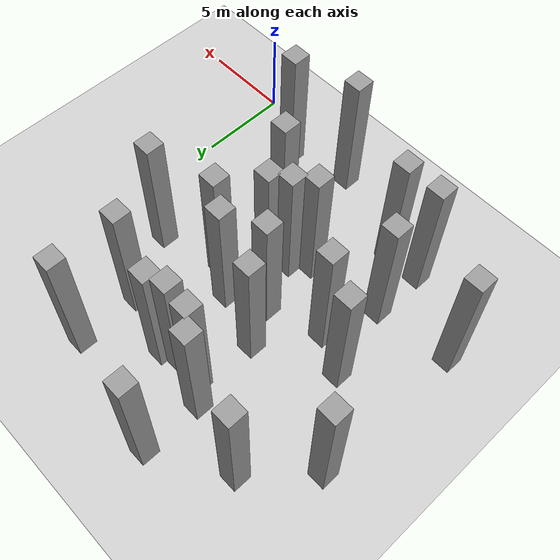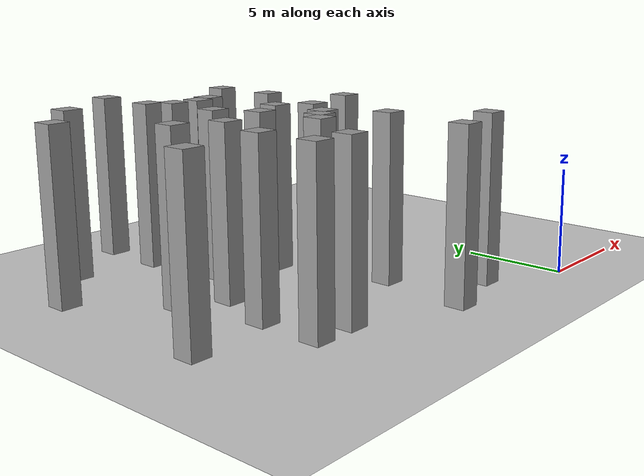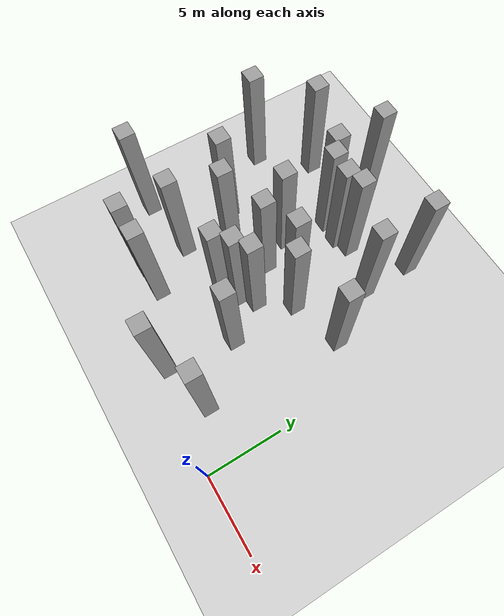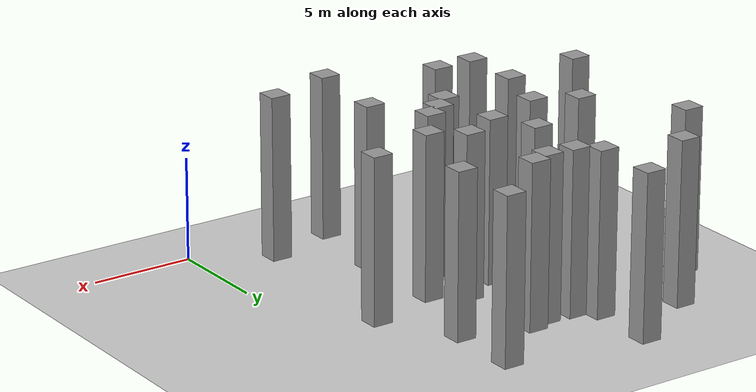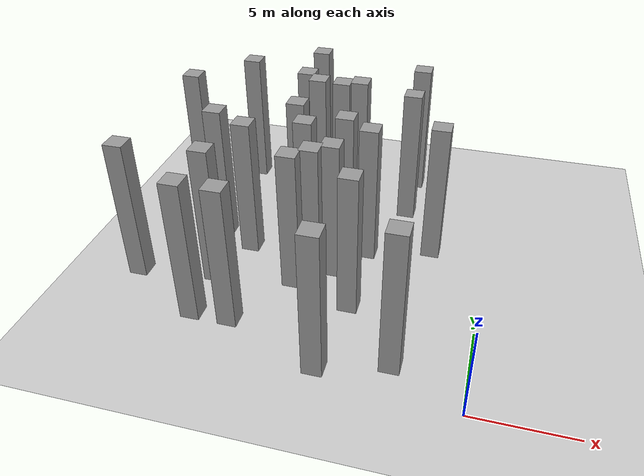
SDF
<sdf version="1.7">
 <world name="default">
  <model name="ground_plane">
   <static>1</static>
   <link name="link">
    <collision name="collision">
     <geometry><plane><normal>0 0 1</normal><size>100 100</size></plane></geometry>
     <surface>
      <contact><collide_bitmask>65535</collide_bitmask></contact>
      <friction><ode><mu>100</mu><mu2>50</mu2></ode></friction>
     </surface>
    </collision>
    <visual name="visual">
     <cast_shadows>0</cast_shadows>
     <geometry><plane><normal>0 0 1</normal><size>100 100</size></plane></geometry>
     <material>
      <script><uri>file://media/materials/scripts/gazebo.material</uri><name>Gazebo/Grey</name></script>
     </material>
    </visual>
   </link>
  </model>
  <model name="unit_box_static95_clone_11">
   <link name="link">
    <inertial>
     <mass>1</mass>
     <inertia>
      <ixx>0.166667</ixx>
      <ixy>0</ixy>
      <ixz>0</ixz>
      <iyy>0.166667</iyy>
      <iyz>0</iyz>
      <izz>0.166667</izz>
     </inertia>
    </inertial>
    <visual name="visual">
     <geometry><box><size>1 1 8</size></box></geometry>
     <material>
      <script><name>Gazebo/Grey</name><uri>file://media/materials/scripts/gazebo.material</uri></script>
      <shader type="pixel"/>
     </material>
    </visual>
    <collision name="collision">
     <geometry><box><size>1 1 8</size></box></geometry>
     <surface>
      <friction>
       <ode><mu>1</mu><mu2>1</mu2><fdir1>0 0 0</fdir1><slip1>0</slip1><slip2>0</slip2></ode>
       <torsional>
        <coefficient>1</coefficient>
        <patch_radius>0</patch_radius>
        <surface_radius>0</surface_radius>
        <use_patch_radius>1</use_patch_radius>
        <ode><slip>0</slip></ode>
       </torsional>
      </friction>
      <bounce><restitution_coefficient>0</restitution_coefficient><threshold>1e+06</threshold></bounce>
      <contact>
       <collide_without_contact>0</collide_without_contact>
       <collide_without_contact_bitmask>1</collide_without_contact_bitmask>
       <collide_bitmask>1</collide_bitmask>
       <ode>
        <soft_cfm>0</soft_cfm>
        <soft_erp>0.2</soft_erp>
        <kp>1e+13</kp>
        <kd>1</kd>
        <max_vel>0.01</max_vel>
        <min_depth>0</min_depth>
       </ode>
       <bullet>
        <split_impulse>1</split_impulse>
        <split_impulse_penetration_threshold>-0.01</split_impulse_penetration_threshold>
        <soft_cfm>0</soft_cfm>
        <soft_erp>0.2</soft_erp>
        <kp>1e+13</kp>
        <kd>1</kd>
       </bullet>
      </contact>
     </surface>
    </collision>
   </link>
   <static>1</static>
   <pose>-14 3 4 0 -0 0</pose>
  </model>
  <model name="unit_box_static95_clone_12">
   <link name="link">
    <inertial>
     <mass>1</mass>
     <inertia>
      <ixx>0.166667</ixx>
      <ixy>0</ixy>
      <ixz>0</ixz>
      <iyy>0.166667</iyy>
      <iyz>0</iyz>
      <izz>0.166667</izz>
     </inertia>
    </inertial>
    <visual name="visual">
     <geometry><box><size>1 1 8</size></box></geometry>
     <material>
      <script><name>Gazebo/Grey</name><uri>file://media/materials/scripts/gazebo.material</uri></script>
      <shader type="pixel"/>
     </material>
    </visual>
    <collision name="collision">
     <geometry><box><size>1 1 8</size></box></geometry>
     <surface>
      <friction>
       <ode><mu>1</mu><mu2>1</mu2><fdir1>0 0 0</fdir1><slip1>0</slip1><slip2>0</slip2></ode>
       <torsional>
        <coefficient>1</coefficient>
        <patch_radius>0</patch_radius>
        <surface_radius>0</surface_radius>
        <use_patch_radius>1</use_patch_radius>
        <ode><slip>0</slip></ode>
       </torsional>
      </friction>
      <bounce><restitution_coefficient>0</restitution_coefficient><threshold>1e+06</threshold></bounce>
      <contact>
       <collide_without_contact>0</collide_without_contact>
       <collide_without_contact_bitmask>1</collide_without_contact_bitmask>
       <collide_bitmask>1</collide_bitmask>
       <ode>
        <soft_cfm>0</soft_cfm>
        <soft_erp>0.2</soft_erp>
        <kp>1e+13</kp>
        <kd>1</kd>
        <max_vel>0.01</max_vel>
        <min_depth>0</min_depth>
       </ode>
       <bullet>
        <split_impulse>1</split_impulse>
        <split_impulse_penetration_threshold>-0.01</split_impulse_penetration_threshold>
        <soft_cfm>0</soft_cfm>
        <soft_erp>0.2</soft_erp>
        <kp>1e+13</kp>
        <kd>1</kd>
       </bullet>
      </contact>
     </surface>
    </collision>
   </link>
   <static>1</static>
   <pose>-15 10 4 0 -0 0</pose>
  </model>
  <model name="unit_box_static95_clone_13">
   <link name="link">
    <inertial>
     <mass>1</mass>
     <inertia>
      <ixx>0.166667</ixx>
      <ixy>0</ixy>
      <ixz>0</ixz>
      <iyy>0.166667</iyy>
      <iyz>0</iyz>
      <izz>0.166667</izz>
     </inertia>
    </inertial>
    <visual name="visual">
     <geometry><box><size>1 1 8</size></box></geometry>
     <material>
      <script><name>Gazebo/Grey</name><uri>file://media/materials/scripts/gazebo.material</uri></script>
      <shader type="pixel"/>
     </material>
    </visual>
    <collision name="collision">
     <geometry><box><size>1 1 8</size></box></geometry>
     <surface>
      <friction>
       <ode><mu>1</mu><mu2>1</mu2><fdir1>0 0 0</fdir1><slip1>0</slip1><slip2>0</slip2></ode>
       <torsional>
        <coefficient>1</coefficient>
        <patch_radius>0</patch_radius>
        <surface_radius>0</surface_radius>
        <use_patch_radius>1</use_patch_radius>
        <ode><slip>0</slip></ode>
       </torsional>
      </friction>
      <bounce><restitution_coefficient>0</restitution_coefficient><threshold>1e+06</threshold></bounce>
      <contact>
       <collide_without_contact>0</collide_without_contact>
       <collide_without_contact_bitmask>1</collide_without_contact_bitmask>
       <collide_bitmask>1</collide_bitmask>
       <ode>
        <soft_cfm>0</soft_cfm>
        <soft_erp>0.2</soft_erp>
        <kp>1e+13</kp>
        <kd>1</kd>
        <max_vel>0.01</max_vel>
        <min_depth>0</min_depth>
       </ode>
       <bullet>
        <split_impulse>1</split_impulse>
        <split_impulse_penetration_threshold>-0.01</split_impulse_penetration_threshold>
        <soft_cfm>0</soft_cfm>
        <soft_erp>0.2</soft_erp>
        <kp>1e+13</kp>
        <kd>1</kd>
       </bullet>
      </contact>
     </surface>
    </collision>
   </link>
   <static>1</static>
   <pose>-11 12 4 0 -0 0</pose>
  </model>
  <model name="unit_box_static95_clone_14">
   <link name="link">
    <inertial>
     <mass>1</mass>
     <inertia>
      <ixx>0.166667</ixx>
      <ixy>0</ixy>
      <ixz>0</ixz>
      <iyy>0.166667</iyy>
      <iyz>0</iyz>
      <izz>0.166667</izz>
     </inertia>
    </inertial>
    <visual name="visual">
     <geometry><box><size>1 1 8</size></box></geometry>
     <material>
      <script><name>Gazebo/Grey</name><uri>file://media/materials/scripts/gazebo.material</uri></script>
      <shader type="pixel"/>
     </material>
    </visual>
    <collision name="collision">
     <geometry><box><size>1 1 8</size></box></geometry>
     <surface>
      <friction>
       <ode><mu>1</mu><mu2>1</mu2><fdir1>0 0 0</fdir1><slip1>0</slip1><slip2>0</slip2></ode>
       <torsional>
        <coefficient>1</coefficient>
        <patch_radius>0</patch_radius>
        <surface_radius>0</surface_radius>
        <use_patch_radius>1</use_patch_radius>
        <ode><slip>0</slip></ode>
       </torsional>
      </friction>
      <bounce><restitution_coefficient>0</restitution_coefficient><threshold>1e+06</threshold></bounce>
      <contact>
       <collide_without_contact>0</collide_without_contact>
       <collide_without_contact_bitmask>1</collide_without_contact_bitmask>
       <collide_bitmask>1</collide_bitmask>
       <ode>
        <soft_cfm>0</soft_cfm>
        <soft_erp>0.2</soft_erp>
        <kp>1e+13</kp>
        <kd>1</kd>
        <max_vel>0.01</max_vel>
        <min_depth>0</min_depth>
       </ode>
       <bullet>
        <split_impulse>1</split_impulse>
        <split_impulse_penetration_threshold>-0.01</split_impulse_penetration_threshold>
        <soft_cfm>0</soft_cfm>
        <soft_erp>0.2</soft_erp>
        <kp>1e+13</kp>
        <kd>1</kd>
       </bullet>
      </contact>
     </surface>
    </collision>
   </link>
   <static>1</static>
   <pose>-8 11 4 0 -0 0</pose>
  </model>
  <model name="unit_box_static95_clone_15">
   <link name="link">
    <inertial>
     <mass>1</mass>
     <inertia>
      <ixx>0.166667</ixx>
      <ixy>0</ixy>
      <ixz>0</ixz>
      <iyy>0.166667</iyy>
      <iyz>0</iyz>
      <izz>0.166667</izz>
     </inertia>
    </inertial>
    <visual name="visual">
     <geometry><box><size>1 1 8</size></box></geometry>
     <material>
      <script><name>Gazebo/Grey</name><uri>file://media/materials/scripts/gazebo.material</uri></script>
      <shader type="pixel"/>
     </material>
    </visual>
    <collision name="collision">
     <geometry><box><size>1 1 8</size></box></geometry>
     <surface>
      <friction>
       <ode><mu>1</mu><mu2>1</mu2><fdir1>0 0 0</fdir1><slip1>0</slip1><slip2>0</slip2></ode>
       <torsional>
        <coefficient>1</coefficient>
        <patch_radius>0</patch_radius>
        <surface_radius>0</surface_radius>
        <use_patch_radius>1</use_patch_radius>
        <ode><slip>0</slip></ode>
       </torsional>
      </friction>
      <bounce><restitution_coefficient>0</restitution_coefficient><threshold>1e+06</threshold></bounce>
      <contact>
       <collide_without_contact>0</collide_without_contact>
       <collide_without_contact_bitmask>1</collide_without_contact_bitmask>
       <collide_bitmask>1</collide_bitmask>
       <ode>
        <soft_cfm>0</soft_cfm>
        <soft_erp>0.2</soft_erp>
        <kp>1e+13</kp>
        <kd>1</kd>
        <max_vel>0.01</max_vel>
        <min_depth>0</min_depth>
       </ode>
       <bullet>
        <split_impulse>1</split_impulse>
        <split_impulse_penetration_threshold>-0.01</split_impulse_penetration_threshold>
        <soft_cfm>0</soft_cfm>
        <soft_erp>0.2</soft_erp>
        <kp>1e+13</kp>
        <kd>1</kd>
       </bullet>
      </contact>
     </surface>
    </collision>
   </link>
   <static>1</static>
   <pose>-6.4408 5.4534 4 0 -0 0</pose>
  </model>
  <model name="unit_box_static95_clone_17">
   <link name="link">
    <inertial>
     <mass>1</mass>
     <inertia>
      <ixx>0.166667</ixx>
      <ixy>0</ixy>
      <ixz>0</ixz>
      <iyy>0.166667</iyy>
      <iyz>0</iyz>
      <izz>0.166667</izz>
     </inertia>
    </inertial>
    <visual name="visual">
     <geometry><box><size>1 1 8</size></box></geometry>
     <material>
      <script><name>Gazebo/Grey</name><uri>file://media/materials/scripts/gazebo.material</uri></script>
      <shader type="pixel"/>
     </material>
    </visual>
    <collision name="collision">
     <geometry><box><size>1 1 8</size></box></geometry>
     <surface>
      <friction>
       <ode><mu>1</mu><mu2>1</mu2><fdir1>0 0 0</fdir1><slip1>0</slip1><slip2>0</slip2></ode>
       <torsional>
        <coefficient>1</coefficient>
        <patch_radius>0</patch_radius>
        <surface_radius>0</surface_radius>
        <use_patch_radius>1</use_patch_radius>
        <ode><slip>0</slip></ode>
       </torsional>
      </friction>
      <bounce><restitution_coefficient>0</restitution_coefficient><threshold>1e+06</threshold></bounce>
      <contact>
       <collide_without_contact>0</collide_without_contact>
       <collide_without_contact_bitmask>1</collide_without_contact_bitmask>
       <collide_bitmask>1</collide_bitmask>
       <ode>
        <soft_cfm>0</soft_cfm>
        <soft_erp>0.2</soft_erp>
        <kp>1e+13</kp>
        <kd>1</kd>
        <max_vel>0.01</max_vel>
        <min_depth>0</min_depth>
       </ode>
       <bullet>
        <split_impulse>1</split_impulse>
        <split_impulse_penetration_threshold>-0.01</split_impulse_penetration_threshold>
        <soft_cfm>0</soft_cfm>
        <soft_erp>0.2</soft_erp>
        <kp>1e+13</kp>
        <kd>1</kd>
       </bullet>
      </contact>
     </surface>
    </collision>
   </link>
   <static>1</static>
   <pose>-3 11 4 0 -0 0</pose>
  </model>
  <model name="unit_box_static95_clone_35">
   <link name="link">
    <inertial>
     <mass>1</mass>
     <inertia>
      <ixx>0.166667</ixx>
      <ixy>0</ixy>
      <ixz>0</ixz>
      <iyy>0.166667</iyy>
      <iyz>0</iyz>
      <izz>0.166667</izz>
     </inertia>
    </inertial>
    <visual name="visual">
     <geometry><box><size>1 1 8</size></box></geometry>
     <material>
      <script><name>Gazebo/Grey</name><uri>file://media/materials/scripts/gazebo.material</uri></script>
      <shader type="pixel"/>
     </material>
    </visual>
    <collision name="collision">
     <geometry><box><size>1 1 8</size></box></geometry>
     <surface>
      <friction>
       <ode><mu>1</mu><mu2>1</mu2><fdir1>0 0 0</fdir1><slip1>0</slip1><slip2>0</slip2></ode>
       <torsional>
        <coefficient>1</coefficient>
        <patch_radius>0</patch_radius>
        <surface_radius>0</surface_radius>
        <use_patch_radius>1</use_patch_radius>
        <ode><slip>0</slip></ode>
       </torsional>
      </friction>
      <bounce><restitution_coefficient>0</restitution_coefficient><threshold>1e+06</threshold></bounce>
      <contact>
       <collide_without_contact>0</collide_without_contact>
       <collide_without_contact_bitmask>1</collide_without_contact_bitmask>
       <collide_bitmask>1</collide_bitmask>
       <ode>
        <soft_cfm>0</soft_cfm>
        <soft_erp>0.2</soft_erp>
        <kp>1e+13</kp>
        <kd>1</kd>
        <max_vel>0.01</max_vel>
        <min_depth>0</min_depth>
       </ode>
       <bullet>
        <split_impulse>1</split_impulse>
        <split_impulse_penetration_threshold>-0.01</split_impulse_penetration_threshold>
        <soft_cfm>0</soft_cfm>
        <soft_erp>0.2</soft_erp>
        <kp>1e+13</kp>
        <kd>1</kd>
       </bullet>
      </contact>
     </surface>
    </collision>
   </link>
   <static>1</static>
   <pose>-12 3 4 0 -0 0</pose>
  </model>
  <model name="unit_box_static95_clone_36">
   <link name="link">
    <inertial>
     <mass>1</mass>
     <inertia>
      <ixx>0.166667</ixx>
      <ixy>0</ixy>
      <ixz>0</ixz>
      <iyy>0.166667</iyy>
      <iyz>0</iyz>
      <izz>0.166667</izz>
     </inertia>
    </inertial>
    <visual name="visual">
     <geometry><box><size>1 1 8</size></box></geometry>
     <material>
      <script><name>Gazebo/Grey</name><uri>file://media/materials/scripts/gazebo.material</uri></script>
      <shader type="pixel"/>
     </material>
    </visual>
    <collision name="collision">
     <geometry><box><size>1 1 8</size></box></geometry>
     <surface>
      <friction>
       <ode><mu>1</mu><mu2>1</mu2><fdir1>0 0 0</fdir1><slip1>0</slip1><slip2>0</slip2></ode>
       <torsional>
        <coefficient>1</coefficient>
        <patch_radius>0</patch_radius>
        <surface_radius>0</surface_radius>
        <use_patch_radius>1</use_patch_radius>
        <ode><slip>0</slip></ode>
       </torsional>
      </friction>
      <bounce><restitution_coefficient>0</restitution_coefficient><threshold>1e+06</threshold></bounce>
      <contact>
       <collide_without_contact>0</collide_without_contact>
       <collide_without_contact_bitmask>1</collide_without_contact_bitmask>
       <collide_bitmask>1</collide_bitmask>
       <ode>
        <soft_cfm>0</soft_cfm>
        <soft_erp>0.2</soft_erp>
        <kp>1e+13</kp>
        <kd>1</kd>
        <max_vel>0.01</max_vel>
        <min_depth>0</min_depth>
       </ode>
       <bullet>
        <split_impulse>1</split_impulse>
        <split_impulse_penetration_threshold>-0.01</split_impulse_penetration_threshold>
        <soft_cfm>0</soft_cfm>
        <soft_erp>0.2</soft_erp>
        <kp>1e+13</kp>
        <kd>1</kd>
       </bullet>
      </contact>
     </surface>
    </collision>
   </link>
   <static>1</static>
   <pose>-13 9 4 0 -0 0</pose>
  </model>
  <model name="unit_box_static95_clone_37">
   <link name="link">
    <inertial>
     <mass>1</mass>
     <inertia>
      <ixx>0.166667</ixx>
      <ixy>0</ixy>
      <ixz>0</ixz>
      <iyy>0.166667</iyy>
      <iyz>0</iyz>
      <izz>0.166667</izz>
     </inertia>
    </inertial>
    <visual name="visual">
     <geometry><box><size>1 1 8</size></box></geometry>
     <material>
      <script><name>Gazebo/Grey</name><uri>file://media/materials/scripts/gazebo.material</uri></script>
      <shader type="pixel"/>
     </material>
    </visual>
    <collision name="collision">
     <geometry><box><size>1 1 8</size></box></geometry>
     <surface>
      <friction>
       <ode><mu>1</mu><mu2>1</mu2><fdir1>0 0 0</fdir1><slip1>0</slip1><slip2>0</slip2></ode>
       <torsional>
        <coefficient>1</coefficient>
        <patch_radius>0</patch_radius>
        <surface_radius>0</surface_radius>
        <use_patch_radius>1</use_patch_radius>
        <ode><slip>0</slip></ode>
       </torsional>
      </friction>
      <bounce><restitution_coefficient>0</restitution_coefficient><threshold>1e+06</threshold></bounce>
      <contact>
       <collide_without_contact>0</collide_without_contact>
       <collide_without_contact_bitmask>1</collide_without_contact_bitmask>
       <collide_bitmask>1</collide_bitmask>
       <ode>
        <soft_cfm>0</soft_cfm>
        <soft_erp>0.2</soft_erp>
        <kp>1e+13</kp>
        <kd>1</kd>
        <max_vel>0.01</max_vel>
        <min_depth>0</min_depth>
       </ode>
       <bullet>
        <split_impulse>1</split_impulse>
        <split_impulse_penetration_threshold>-0.01</split_impulse_penetration_threshold>
        <soft_cfm>0</soft_cfm>
        <soft_erp>0.2</soft_erp>
        <kp>1e+13</kp>
        <kd>1</kd>
       </bullet>
      </contact>
     </surface>
    </collision>
   </link>
   <static>1</static>
   <pose>-10 10 4 0 -0 0</pose>
  </model>
  <model name="unit_box_static95_clone_38">
   <link name="link">
    <inertial>
     <mass>1</mass>
     <inertia>
      <ixx>0.166667</ixx>
      <ixy>0</ixy>
      <ixz>0</ixz>
      <iyy>0.166667</iyy>
      <iyz>0</iyz>
      <izz>0.166667</izz>
     </inertia>
    </inertial>
    <visual name="visual">
     <geometry><box><size>1 1 8</size></box></geometry>
     <material>
      <script><name>Gazebo/Grey</name><uri>file://media/materials/scripts/gazebo.material</uri></script>
      <shader type="pixel"/>
     </material>
    </visual>
    <collision name="collision">
     <geometry><box><size>1 1 8</size></box></geometry>
     <surface>
      <friction>
       <ode><mu>1</mu><mu2>1</mu2><fdir1>0 0 0</fdir1><slip1>0</slip1><slip2>0</slip2></ode>
       <torsional>
        <coefficient>1</coefficient>
        <patch_radius>0</patch_radius>
        <surface_radius>0</surface_radius>
        <use_patch_radius>1</use_patch_radius>
        <ode><slip>0</slip></ode>
       </torsional>
      </friction>
      <bounce><restitution_coefficient>0</restitution_coefficient><threshold>1e+06</threshold></bounce>
      <contact>
       <collide_without_contact>0</collide_without_contact>
       <collide_without_contact_bitmask>1</collide_without_contact_bitmask>
       <collide_bitmask>1</collide_bitmask>
       <ode>
        <soft_cfm>0</soft_cfm>
        <soft_erp>0.2</soft_erp>
        <kp>1e+13</kp>
        <kd>1</kd>
        <max_vel>0.01</max_vel>
        <min_depth>0</min_depth>
       </ode>
       <bullet>
        <split_impulse>1</split_impulse>
        <split_impulse_penetration_threshold>-0.01</split_impulse_penetration_threshold>
        <soft_cfm>0</soft_cfm>
        <soft_erp>0.2</soft_erp>
        <kp>1e+13</kp>
        <kd>1</kd>
       </bullet>
      </contact>
     </surface>
    </collision>
   </link>
   <static>1</static>
   <pose>-6.48288 10 4 0 -0 0</pose>
  </model>
  <model name="unit_box_static95_clone_39">
   <link name="link">
    <inertial>
     <mass>1</mass>
     <inertia>
      <ixx>0.166667</ixx>
      <ixy>0</ixy>
      <ixz>0</ixz>
      <iyy>0.166667</iyy>
      <iyz>0</iyz>
      <izz>0.166667</izz>
     </inertia>
    </inertial>
    <visual name="visual">
     <geometry><box><size>1 1 8</size></box></geometry>
     <material>
      <script><name>Gazebo/Grey</name><uri>file://media/materials/scripts/gazebo.material</uri></script>
      <shader type="pixel"/>
     </material>
    </visual>
    <collision name="collision">
     <geometry><box><size>1 1 8</size></box></geometry>
     <surface>
      <friction>
       <ode><mu>1</mu><mu2>1</mu2><fdir1>0 0 0</fdir1><slip1>0</slip1><slip2>0</slip2></ode>
       <torsional>
        <coefficient>1</coefficient>
        <patch_radius>0</patch_radius>
        <surface_radius>0</surface_radius>
        <use_patch_radius>1</use_patch_radius>
        <ode><slip>0</slip></ode>
       </torsional>
      </friction>
      <bounce><restitution_coefficient>0</restitution_coefficient><threshold>1e+06</threshold></bounce>
      <contact>
       <collide_without_contact>0</collide_without_contact>
       <collide_without_contact_bitmask>1</collide_without_contact_bitmask>
       <collide_bitmask>1</collide_bitmask>
       <ode>
        <soft_cfm>0</soft_cfm>
        <soft_erp>0.2</soft_erp>
        <kp>1e+13</kp>
        <kd>1</kd>
        <max_vel>0.01</max_vel>
        <min_depth>0</min_depth>
       </ode>
       <bullet>
        <split_impulse>1</split_impulse>
        <split_impulse_penetration_threshold>-0.01</split_impulse_penetration_threshold>
        <soft_cfm>0</soft_cfm>
        <soft_erp>0.2</soft_erp>
        <kp>1e+13</kp>
        <kd>1</kd>
       </bullet>
      </contact>
     </surface>
    </collision>
   </link>
   <static>1</static>
   <pose>-5 14.5086 4 0 -0 0</pose>
  </model>
  <model name="unit_box_static95_clone_61">
   <link name="link">
    <inertial>
     <mass>1</mass>
     <inertia>
      <ixx>0.166667</ixx>
      <ixy>0</ixy>
      <ixz>0</ixz>
      <iyy>0.166667</iyy>
      <iyz>0</iyz>
      <izz>0.166667</izz>
     </inertia>
    </inertial>
    <visual name="visual">
     <geometry><box><size>1 1 8</size></box></geometry>
     <material>
      <script><name>Gazebo/Grey</name><uri>file://media/materials/scripts/gazebo.material</uri></script>
      <shader type="pixel"/>
     </material>
    </visual>
    <collision name="collision">
     <geometry><box><size>1 1 8</size></box></geometry>
     <surface>
      <friction>
       <ode><mu>1</mu><mu2>1</mu2><fdir1>0 0 0</fdir1><slip1>0</slip1><slip2>0</slip2></ode>
       <torsional>
        <coefficient>1</coefficient>
        <patch_radius>0</patch_radius>
        <surface_radius>0</surface_radius>
        <use_patch_radius>1</use_patch_radius>
        <ode><slip>0</slip></ode>
       </torsional>
      </friction>
      <bounce><restitution_coefficient>0</restitution_coefficient><threshold>1e+06</threshold></bounce>
      <contact>
       <collide_without_contact>0</collide_without_contact>
       <collide_without_contact_bitmask>1</collide_without_contact_bitmask>
       <collide_bitmask>1</collide_bitmask>
       <ode>
        <soft_cfm>0</soft_cfm>
        <soft_erp>0.2</soft_erp>
        <kp>1e+13</kp>
        <kd>1</kd>
        <max_vel>0.01</max_vel>
        <min_depth>0</min_depth>
       </ode>
       <bullet>
        <split_impulse>1</split_impulse>
        <split_impulse_penetration_threshold>-0.01</split_impulse_penetration_threshold>
        <soft_cfm>0</soft_cfm>
        <soft_erp>0.2</soft_erp>
        <kp>1e+13</kp>
        <kd>1</kd>
       </bullet>
      </contact>
     </surface>
    </collision>
   </link>
   <static>1</static>
   <pose>-7 1 4 0 -0 0</pose>
  </model>
  <model name="unit_box_static95_clone_74">
   <link name="link">
    <inertial>
     <mass>1</mass>
     <inertia>
      <ixx>0.166667</ixx>
      <ixy>0</ixy>
      <ixz>0</ixz>
      <iyy>0.166667</iyy>
      <iyz>0</iyz>
      <izz>0.166667</izz>
     </inertia>
    </inertial>
    <visual name="visual">
     <geometry><box><size>1 1 8</size></box></geometry>
     <material>
      <script><name>Gazebo/Grey</name><uri>file://media/materials/scripts/gazebo.material</uri></script>
      <shader type="pixel"/>
     </material>
    </visual>
    <collision name="collision">
     <geometry><box><size>1 1 8</size></box></geometry>
     <surface>
      <friction>
       <ode><mu>1</mu><mu2>1</mu2><fdir1>0 0 0</fdir1><slip1>0</slip1><slip2>0</slip2></ode>
       <torsional>
        <coefficient>1</coefficient>
        <patch_radius>0</patch_radius>
        <surface_radius>0</surface_radius>
        <use_patch_radius>1</use_patch_radius>
        <ode><slip>0</slip></ode>
       </torsional>
      </friction>
      <bounce><restitution_coefficient>0</restitution_coefficient><threshold>1e+06</threshold></bounce>
      <contact>
       <collide_without_contact>0</collide_without_contact>
       <collide_without_contact_bitmask>1</collide_without_contact_bitmask>
       <collide_bitmask>1</collide_bitmask>
       <ode>
        <soft_cfm>0</soft_cfm>
        <soft_erp>0.2</soft_erp>
        <kp>1e+13</kp>
        <kd>1</kd>
        <max_vel>0.01</max_vel>
        <min_depth>0</min_depth>
       </ode>
       <bullet>
        <split_impulse>1</split_impulse>
        <split_impulse_penetration_threshold>-0.01</split_impulse_penetration_threshold>
        <soft_cfm>0</soft_cfm>
        <soft_erp>0.2</soft_erp>
        <kp>1e+13</kp>
        <kd>1</kd>
       </bullet>
      </contact>
     </surface>
    </collision>
   </link>
   <static>1</static>
   <pose>-5 18 4 0 -0 0</pose>
  </model>
  <model name="unit_box_static95_clone_75">
   <link name="link">
    <inertial>
     <mass>1</mass>
     <inertia>
      <ixx>0.166667</ixx>
      <ixy>0</ixy>
      <ixz>0</ixz>
      <iyy>0.166667</iyy>
      <iyz>0</iyz>
      <izz>0.166667</izz>
     </inertia>
    </inertial>
    <visual name="visual">
     <geometry><box><size>1 1 8</size></box></geometry>
     <material>
      <script><name>Gazebo/Grey</name><uri>file://media/materials/scripts/gazebo.material</uri></script>
      <shader type="pixel"/>
     </material>
    </visual>
    <collision name="collision">
     <geometry><box><size>1 1 8</size></box></geometry>
     <surface>
      <friction>
       <ode><mu>1</mu><mu2>1</mu2><fdir1>0 0 0</fdir1><slip1>0</slip1><slip2>0</slip2></ode>
       <torsional>
        <coefficient>1</coefficient>
        <patch_radius>0</patch_radius>
        <surface_radius>0</surface_radius>
        <use_patch_radius>1</use_patch_radius>
        <ode><slip>0</slip></ode>
       </torsional>
      </friction>
      <bounce><restitution_coefficient>0</restitution_coefficient><threshold>1e+06</threshold></bounce>
      <contact>
       <collide_without_contact>0</collide_without_contact>
       <collide_without_contact_bitmask>1</collide_without_contact_bitmask>
       <collide_bitmask>1</collide_bitmask>
       <ode>
        <soft_cfm>0</soft_cfm>
        <soft_erp>0.2</soft_erp>
        <kp>1e+13</kp>
        <kd>1</kd>
        <max_vel>0.01</max_vel>
        <min_depth>0</min_depth>
       </ode>
       <bullet>
        <split_impulse>1</split_impulse>
        <split_impulse_penetration_threshold>-0.01</split_impulse_penetration_threshold>
        <soft_cfm>0</soft_cfm>
        <soft_erp>0.2</soft_erp>
        <kp>1e+13</kp>
        <kd>1</kd>
       </bullet>
      </contact>
     </surface>
    </collision>
   </link>
   <static>1</static>
   <pose>-15.3372 17 4 0 -0 0</pose>
  </model>
  <model name="unit_box_static95_clone_76">
   <link name="link">
    <inertial>
     <mass>1</mass>
     <inertia>
      <ixx>0.166667</ixx>
      <ixy>0</ixy>
      <ixz>0</ixz>
      <iyy>0.166667</iyy>
      <iyz>0</iyz>
      <izz>0.166667</izz>
     </inertia>
    </inertial>
    <visual name="visual">
     <geometry><box><size>1 1 8</size></box></geometry>
     <material>
      <script><name>Gazebo/Grey</name><uri>file://media/materials/scripts/gazebo.material</uri></script>
      <shader type="pixel"/>
     </material>
    </visual>
    <collision name="collision">
     <geometry><box><size>1 1 8</size></box></geometry>
     <surface>
      <friction>
       <ode><mu>1</mu><mu2>1</mu2><fdir1>0 0 0</fdir1><slip1>0</slip1><slip2>0</slip2></ode>
       <torsional>
        <coefficient>1</coefficient>
        <patch_radius>0</patch_radius>
        <surface_radius>0</surface_radius>
        <use_patch_radius>1</use_patch_radius>
        <ode><slip>0</slip></ode>
       </torsional>
      </friction>
      <bounce><restitution_coefficient>0</restitution_coefficient><threshold>1e+06</threshold></bounce>
      <contact>
       <collide_without_contact>0</collide_without_contact>
       <collide_without_contact_bitmask>1</collide_without_contact_bitmask>
       <collide_bitmask>1</collide_bitmask>
       <ode>
        <soft_cfm>0</soft_cfm>
        <soft_erp>0.2</soft_erp>
        <kp>1e+13</kp>
        <kd>1</kd>
        <max_vel>0.01</max_vel>
        <min_depth>0</min_depth>
       </ode>
       <bullet>
        <split_impulse>1</split_impulse>
        <split_impulse_penetration_threshold>-0.01</split_impulse_penetration_threshold>
        <soft_cfm>0</soft_cfm>
        <soft_erp>0.2</soft_erp>
        <kp>1e+13</kp>
        <kd>1</kd>
       </bullet>
      </contact>
     </surface>
    </collision>
   </link>
   <static>1</static>
   <pose>-11.5867 16 4 0 -0 0</pose>
  </model>
  <model name="unit_box_static95_clone_77">
   <link name="link">
    <inertial>
     <mass>1</mass>
     <inertia>
      <ixx>0.166667</ixx>
      <ixy>0</ixy>
      <ixz>0</ixz>
      <iyy>0.166667</iyy>
      <iyz>0</iyz>
      <izz>0.166667</izz>
     </inertia>
    </inertial>
    <visual name="visual">
     <geometry><box><size>1 1 8</size></box></geometry>
     <material>
      <script><name>Gazebo/Grey</name><uri>file://media/materials/scripts/gazebo.material</uri></script>
      <shader type="pixel"/>
     </material>
    </visual>
    <collision name="collision">
     <geometry><box><size>1 1 8</size></box></geometry>
     <surface>
      <friction>
       <ode><mu>1</mu><mu2>1</mu2><fdir1>0 0 0</fdir1><slip1>0</slip1><slip2>0</slip2></ode>
       <torsional>
        <coefficient>1</coefficient>
        <patch_radius>0</patch_radius>
        <surface_radius>0</surface_radius>
        <use_patch_radius>1</use_patch_radius>
        <ode><slip>0</slip></ode>
       </torsional>
      </friction>
      <bounce><restitution_coefficient>0</restitution_coefficient><threshold>1e+06</threshold></bounce>
      <contact>
       <collide_without_contact>0</collide_without_contact>
       <collide_without_contact_bitmask>1</collide_without_contact_bitmask>
       <collide_bitmask>1</collide_bitmask>
       <ode>
        <soft_cfm>0</soft_cfm>
        <soft_erp>0.2</soft_erp>
        <kp>1e+13</kp>
        <kd>1</kd>
        <max_vel>0.01</max_vel>
        <min_depth>0</min_depth>
       </ode>
       <bullet>
        <split_impulse>1</split_impulse>
        <split_impulse_penetration_threshold>-0.01</split_impulse_penetration_threshold>
        <soft_cfm>0</soft_cfm>
        <soft_erp>0.2</soft_erp>
        <kp>1e+13</kp>
        <kd>1</kd>
       </bullet>
      </contact>
     </surface>
    </collision>
   </link>
   <static>1</static>
   <pose>-18 14 4 0 -0 0</pose>
  </model>
  <model name="unit_box_static95_clone_78">
   <link name="link">
    <inertial>
     <mass>1</mass>
     <inertia>
      <ixx>0.166667</ixx>
      <ixy>0</ixy>
      <ixz>0</ixz>
      <iyy>0.166667</iyy>
      <iyz>0</iyz>
      <izz>0.166667</izz>
     </inertia>
    </inertial>
    <visual name="visual">
     <geometry><box><size>1 1 8</size></box></geometry>
     <material>
      <script><name>Gazebo/Grey</name><uri>file://media/materials/scripts/gazebo.material</uri></script>
      <shader type="pixel"/>
     </material>
    </visual>
    <collision name="collision">
     <geometry><box><size>1 1 8</size></box></geometry>
     <surface>
      <friction>
       <ode><mu>1</mu><mu2>1</mu2><fdir1>0 0 0</fdir1><slip1>0</slip1><slip2>0</slip2></ode>
       <torsional>
        <coefficient>1</coefficient>
        <patch_radius>0</patch_radius>
        <surface_radius>0</surface_radius>
        <use_patch_radius>1</use_patch_radius>
        <ode><slip>0</slip></ode>
       </torsional>
      </friction>
      <bounce><restitution_coefficient>0</restitution_coefficient><threshold>1e+06</threshold></bounce>
      <contact>
       <collide_without_contact>0</collide_without_contact>
       <collide_without_contact_bitmask>1</collide_without_contact_bitmask>
       <collide_bitmask>1</collide_bitmask>
       <ode>
        <soft_cfm>0</soft_cfm>
        <soft_erp>0.2</soft_erp>
        <kp>1e+13</kp>
        <kd>1</kd>
        <max_vel>0.01</max_vel>
        <min_depth>0</min_depth>
       </ode>
       <bullet>
        <split_impulse>1</split_impulse>
        <split_impulse_penetration_threshold>-0.01</split_impulse_penetration_threshold>
        <soft_cfm>0</soft_cfm>
        <soft_erp>0.2</soft_erp>
        <kp>1e+13</kp>
        <kd>1</kd>
       </bullet>
      </contact>
     </surface>
    </collision>
   </link>
   <static>1</static>
   <pose>-18.1673 5.45747 4 0 -0 0</pose>
  </model>
  <model name="unit_box_static95_clone_88">
   <link name="link">
    <inertial>
     <mass>1</mass>
     <inertia>
      <ixx>0.166667</ixx>
      <ixy>0</ixy>
      <ixz>0</ixz>
      <iyy>0.166667</iyy>
      <iyz>0</iyz>
      <izz>0.166667</izz>
     </inertia>
    </inertial>
    <visual name="visual">
     <geometry><box><size>1 1 8</size></box></geometry>
     <material>
      <script><name>Gazebo/Grey</name><uri>file://media/materials/scripts/gazebo.material</uri></script>
      <shader type="pixel"/>
     </material>
    </visual>
    <collision name="collision">
     <geometry><box><size>1 1 8</size></box></geometry>
     <surface>
      <friction>
       <ode><mu>1</mu><mu2>1</mu2><fdir1>0 0 0</fdir1><slip1>0</slip1><slip2>0</slip2></ode>
       <torsional>
        <coefficient>1</coefficient>
        <patch_radius>0</patch_radius>
        <surface_radius>0</surface_radius>
        <use_patch_radius>1</use_patch_radius>
        <ode><slip>0</slip></ode>
       </torsional>
      </friction>
      <bounce><restitution_coefficient>0</restitution_coefficient><threshold>1e+06</threshold></bounce>
      <contact>
       <collide_without_contact>0</collide_without_contact>
       <collide_without_contact_bitmask>1</collide_without_contact_bitmask>
       <collide_bitmask>1</collide_bitmask>
       <ode>
        <soft_cfm>0</soft_cfm>
        <soft_erp>0.2</soft_erp>
        <kp>1e+13</kp>
        <kd>1</kd>
        <max_vel>0.01</max_vel>
        <min_depth>0</min_depth>
       </ode>
       <bullet>
        <split_impulse>1</split_impulse>
        <split_impulse_penetration_threshold>-0.01</split_impulse_penetration_threshold>
        <soft_cfm>0</soft_cfm>
        <soft_erp>0.2</soft_erp>
        <kp>1e+13</kp>
        <kd>1</kd>
       </bullet>
      </contact>
     </surface>
    </collision>
   </link>
   <static>1</static>
   <pose>-3.58433 2 4 0 -0 0</pose>
  </model>
  <model name="unit_box_static95_clone_89">
   <link name="link">
    <inertial>
     <mass>1</mass>
     <inertia>
      <ixx>0.166667</ixx>
      <ixy>0</ixy>
      <ixz>0</ixz>
      <iyy>0.166667</iyy>
      <iyz>0</iyz>
      <izz>0.166667</izz>
     </inertia>
    </inertial>
    <visual name="visual">
     <geometry><box><size>1 1 8</size></box></geometry>
     <material>
      <script><name>Gazebo/Grey</name><uri>file://media/materials/scripts/gazebo.material</uri></script>
      <shader type="pixel"/>
     </material>
    </visual>
    <collision name="collision">
     <geometry><box><size>1 1 8</size></box></geometry>
     <surface>
      <friction>
       <ode><mu>1</mu><mu2>1</mu2><fdir1>0 0 0</fdir1><slip1>0</slip1><slip2>0</slip2></ode>
       <torsional>
        <coefficient>1</coefficient>
        <patch_radius>0</patch_radius>
        <surface_radius>0</surface_radius>
        <use_patch_radius>1</use_patch_radius>
        <ode><slip>0</slip></ode>
       </torsional>
      </friction>
      <bounce><restitution_coefficient>0</restitution_coefficient><threshold>1e+06</threshold></bounce>
      <contact>
       <collide_without_contact>0</collide_without_contact>
       <collide_without_contact_bitmask>1</collide_without_contact_bitmask>
       <collide_bitmask>1</collide_bitmask>
       <ode>
        <soft_cfm>0</soft_cfm>
        <soft_erp>0.2</soft_erp>
        <kp>1e+13</kp>
        <kd>1</kd>
        <max_vel>0.01</max_vel>
        <min_depth>0</min_depth>
       </ode>
       <bullet>
        <split_impulse>1</split_impulse>
        <split_impulse_penetration_threshold>-0.01</split_impulse_penetration_threshold>
        <soft_cfm>0</soft_cfm>
        <soft_erp>0.2</soft_erp>
        <kp>1e+13</kp>
        <kd>1</kd>
       </bullet>
      </contact>
     </surface>
    </collision>
   </link>
   <static>1</static>
   <pose>-14 6 4 0 -0 0</pose>
  </model>
  <model name="unit_box_static95_clone_90">
   <link name="link">
    <inertial>
     <mass>1</mass>
     <inertia>
      <ixx>0.166667</ixx>
      <ixy>0</ixy>
      <ixz>0</ixz>
      <iyy>0.166667</iyy>
      <iyz>0</iyz>
      <izz>0.166667</izz>
     </inertia>
    </inertial>
    <visual name="visual">
     <geometry><box><size>1 1 8</size></box></geometry>
     <material>
      <script><name>Gazebo/Grey</name><uri>file://media/materials/scripts/gazebo.material</uri></script>
      <shader type="pixel"/>
     </material>
    </visual>
    <collision name="collision">
     <geometry><box><size>1 1 8</size></box></geometry>
     <surface>
      <friction>
       <ode><mu>1</mu><mu2>1</mu2><fdir1>0 0 0</fdir1><slip1>0</slip1><slip2>0</slip2></ode>
       <torsional>
        <coefficient>1</coefficient>
        <patch_radius>0</patch_radius>
        <surface_radius>0</surface_radius>
        <use_patch_radius>1</use_patch_radius>
        <ode><slip>0</slip></ode>
       </torsional>
      </friction>
      <bounce><restitution_coefficient>0</restitution_coefficient><threshold>1e+06</threshold></bounce>
      <contact>
       <collide_without_contact>0</collide_without_contact>
       <collide_without_contact_bitmask>1</collide_without_contact_bitmask>
       <collide_bitmask>1</collide_bitmask>
       <ode>
        <soft_cfm>0</soft_cfm>
        <soft_erp>0.2</soft_erp>
        <kp>1e+13</kp>
        <kd>1</kd>
        <max_vel>0.01</max_vel>
        <min_depth>0</min_depth>
       </ode>
       <bullet>
        <split_impulse>1</split_impulse>
        <split_impulse_penetration_threshold>-0.01</split_impulse_penetration_threshold>
        <soft_cfm>0</soft_cfm>
        <soft_erp>0.2</soft_erp>
        <kp>1e+13</kp>
        <kd>1</kd>
       </bullet>
      </contact>
     </surface>
    </collision>
   </link>
   <static>1</static>
   <pose>-8 8 4 0 -0 0</pose>
  </model>
  <model name="unit_box_static95_clone_98">
   <link name="link">
    <inertial>
     <mass>1</mass>
     <inertia>
      <ixx>0.166667</ixx>
      <ixy>0</ixy>
      <ixz>0</ixz>
      <iyy>0.166667</iyy>
      <iyz>0</iyz>
      <izz>0.166667</izz>
     </inertia>
    </inertial>
    <visual name="visual">
     <geometry><box><size>1 1 8</size></box></geometry>
     <material>
      <script><name>Gazebo/Grey</name><uri>file://media/materials/scripts/gazebo.material</uri></script>
      <shader type="pixel"/>
     </material>
    </visual>
    <collision name="collision">
     <geometry><box><size>1 1 8</size></box></geometry>
     <surface>
      <friction>
       <ode><mu>1</mu><mu2>1</mu2><fdir1>0 0 0</fdir1><slip1>0</slip1><slip2>0</slip2></ode>
       <torsional>
        <coefficient>1</coefficient>
        <patch_radius>0</patch_radius>
        <surface_radius>0</surface_radius>
        <use_patch_radius>1</use_patch_radius>
        <ode><slip>0</slip></ode>
       </torsional>
      </friction>
      <bounce><restitution_coefficient>0</restitution_coefficient><threshold>1e+06</threshold></bounce>
      <contact>
       <collide_without_contact>0</collide_without_contact>
       <collide_without_contact_bitmask>1</collide_without_contact_bitmask>
       <collide_bitmask>1</collide_bitmask>
       <ode>
        <soft_cfm>0</soft_cfm>
        <soft_erp>0.2</soft_erp>
        <kp>1e+13</kp>
        <kd>1</kd>
        <max_vel>0.01</max_vel>
        <min_depth>0</min_depth>
       </ode>
       <bullet>
        <split_impulse>1</split_impulse>
        <split_impulse_penetration_threshold>-0.01</split_impulse_penetration_threshold>
        <soft_cfm>0</soft_cfm>
        <soft_erp>0.2</soft_erp>
        <kp>1e+13</kp>
        <kd>1</kd>
       </bullet>
      </contact>
     </surface>
    </collision>
   </link>
   <static>1</static>
   <pose>-8.89583 7.37127 4 0 -0 0</pose>
  </model>
  <model name="unit_box_static95_clone_99">
   <link name="link">
    <inertial>
     <mass>1</mass>
     <inertia>
      <ixx>0.166667</ixx>
      <ixy>0</ixy>
      <ixz>0</ixz>
      <iyy>0.166667</iyy>
      <iyz>0</iyz>
      <izz>0.166667</izz>
     </inertia>
    </inertial>
    <visual name="visual">
     <geometry><box><size>1 1 8</size></box></geometry>
     <material>
      <script><name>Gazebo/Grey</name><uri>file://media/materials/scripts/gazebo.material</uri></script>
      <shader type="pixel"/>
     </material>
    </visual>
    <collision name="collision">
     <geometry><box><size>1 1 8</size></box></geometry>
     <surface>
      <friction>
       <ode><mu>1</mu><mu2>1</mu2><fdir1>0 0 0</fdir1><slip1>0</slip1><slip2>0</slip2></ode>
       <torsional>
        <coefficient>1</coefficient>
        <patch_radius>0</patch_radius>
        <surface_radius>0</surface_radius>
        <use_patch_radius>1</use_patch_radius>
        <ode><slip>0</slip></ode>
       </torsional>
      </friction>
      <bounce><restitution_coefficient>0</restitution_coefficient><threshold>1e+06</threshold></bounce>
      <contact>
       <collide_without_contact>0</collide_without_contact>
       <collide_without_contact_bitmask>1</collide_without_contact_bitmask>
       <collide_bitmask>1</collide_bitmask>
       <ode>
        <soft_cfm>0</soft_cfm>
        <soft_erp>0.2</soft_erp>
        <kp>1e+13</kp>
        <kd>1</kd>
        <max_vel>0.01</max_vel>
        <min_depth>0</min_depth>
       </ode>
       <bullet>
        <split_impulse>1</split_impulse>
        <split_impulse_penetration_threshold>-0.01</split_impulse_penetration_threshold>
        <soft_cfm>0</soft_cfm>
        <soft_erp>0.2</soft_erp>
        <kp>1e+13</kp>
        <kd>1</kd>
       </bullet>
      </contact>
     </surface>
    </collision>
   </link>
   <static>1</static>
   <pose>-9.77657 6.57296 4 0 -0 0</pose>
  </model>
  <model name="unit_box_static95_clone_106">
   <link name="link">
    <inertial>
     <mass>1</mass>
     <inertia>
      <ixx>0.166667</ixx>
      <ixy>0</ixy>
      <ixz>0</ixz>
      <iyy>0.166667</iyy>
      <iyz>0</iyz>
      <izz>0.166667</izz>
     </inertia>
    </inertial>
    <visual name="visual">
     <geometry><box><size>1 1 8</size></box></geometry>
     <material>
      <script><name>Gazebo/Grey</name><uri>file://media/materials/scripts/gazebo.material</uri></script>
      <shader type="pixel"/>
     </material>
    </visual>
    <collision name="collision">
     <geometry><box><size>1 1 8</size></box></geometry>
     <surface>
      <friction>
       <ode><mu>1</mu><mu2>1</mu2><fdir1>0 0 0</fdir1><slip1>0</slip1><slip2>0</slip2></ode>
       <torsional>
        <coefficient>1</coefficient>
        <patch_radius>0</patch_radius>
        <surface_radius>0</surface_radius>
        <use_patch_radius>1</use_patch_radius>
        <ode><slip>0</slip></ode>
       </torsional>
      </friction>
      <bounce><restitution_coefficient>0</restitution_coefficient><threshold>1e+06</threshold></bounce>
      <contact>
       <collide_without_contact>0</collide_without_contact>
       <collide_without_contact_bitmask>1</collide_without_contact_bitmask>
       <collide_bitmask>1</collide_bitmask>
       <ode>
        <soft_cfm>0</soft_cfm>
        <soft_erp>0.2</soft_erp>
        <kp>1e+13</kp>
        <kd>1</kd>
        <max_vel>0.01</max_vel>
        <min_depth>0</min_depth>
       </ode>
       <bullet>
        <split_impulse>1</split_impulse>
        <split_impulse_penetration_threshold>-0.01</split_impulse_penetration_threshold>
        <soft_cfm>0</soft_cfm>
        <soft_erp>0.2</soft_erp>
        <kp>1e+13</kp>
        <kd>1</kd>
       </bullet>
      </contact>
     </surface>
    </collision>
   </link>
   <static>1</static>
   <pose>-10.6653 15.2106 4 0 -0 0</pose>
  </model>
  <model name="unit_box_static95_clone_107">
   <link name="link">
    <inertial>
     <mass>1</mass>
     <inertia>
      <ixx>0.166667</ixx>
      <ixy>0</ixy>
      <ixz>0</ixz>
      <iyy>0.166667</iyy>
      <iyz>0</iyz>
      <izz>0.166667</izz>
     </inertia>
    </inertial>
    <visual name="visual">
     <geometry><box><size>1 1 8</size></box></geometry>
     <material>
      <script><name>Gazebo/Grey</name><uri>file://media/materials/scripts/gazebo.material</uri></script>
      <shader type="pixel"/>
     </material>
    </visual>
    <collision name="collision">
     <geometry><box><size>1 1 8</size></box></geometry>
     <surface>
      <friction>
       <ode><mu>1</mu><mu2>1</mu2><fdir1>0 0 0</fdir1><slip1>0</slip1><slip2>0</slip2></ode>
       <torsional>
        <coefficient>1</coefficient>
        <patch_radius>0</patch_radius>
        <surface_radius>0</surface_radius>
        <use_patch_radius>1</use_patch_radius>
        <ode><slip>0</slip></ode>
       </torsional>
      </friction>
      <bounce><restitution_coefficient>0</restitution_coefficient><threshold>1e+06</threshold></bounce>
      <contact>
       <collide_without_contact>0</collide_without_contact>
       <collide_without_contact_bitmask>1</collide_without_contact_bitmask>
       <collide_bitmask>1</collide_bitmask>
       <ode>
        <soft_cfm>0</soft_cfm>
        <soft_erp>0.2</soft_erp>
        <kp>1e+13</kp>
        <kd>1</kd>
        <max_vel>0.01</max_vel>
        <min_depth>0</min_depth>
       </ode>
       <bullet>
        <split_impulse>1</split_impulse>
        <split_impulse_penetration_threshold>-0.01</split_impulse_penetration_threshold>
        <soft_cfm>0</soft_cfm>
        <soft_erp>0.2</soft_erp>
        <kp>1e+13</kp>
        <kd>1</kd>
       </bullet>
      </contact>
     </surface>
    </collision>
   </link>
   <static>1</static>
   <pose>-9.21973 15.101 4 0 -0 0</pose>
  </model>
  <model name="unit_box_static95_clone_108">
   <link name="link">
    <inertial>
     <mass>1</mass>
     <inertia>
      <ixx>0.166667</ixx>
      <ixy>0</ixy>
      <ixz>0</ixz>
      <iyy>0.166667</iyy>
      <iyz>0</iyz>
      <izz>0.166667</izz>
     </inertia>
    </inertial>
    <visual name="visual">
     <geometry><box><size>1 1 8</size></box></geometry>
     <material>
      <script><name>Gazebo/Grey</name><uri>file://media/materials/scripts/gazebo.material</uri></script>
      <shader type="pixel"/>
     </material>
    </visual>
    <collision name="collision">
     <geometry><box><size>1 1 8</size></box></geometry>
     <surface>
      <friction>
       <ode><mu>1</mu><mu2>1</mu2><fdir1>0 0 0</fdir1><slip1>0</slip1><slip2>0</slip2></ode>
       <torsional>
        <coefficient>1</coefficient>
        <patch_radius>0</patch_radius>
        <surface_radius>0</surface_radius>
        <use_patch_radius>1</use_patch_radius>
        <ode><slip>0</slip></ode>
       </torsional>
      </friction>
      <bounce><restitution_coefficient>0</restitution_coefficient><threshold>1e+06</threshold></bounce>
      <contact>
       <collide_without_contact>0</collide_without_contact>
       <collide_without_contact_bitmask>1</collide_without_contact_bitmask>
       <collide_bitmask>1</collide_bitmask>
       <ode>
        <soft_cfm>0</soft_cfm>
        <soft_erp>0.2</soft_erp>
        <kp>1e+13</kp>
        <kd>1</kd>
        <max_vel>0.01</max_vel>
        <min_depth>0</min_depth>
       </ode>
       <bullet>
        <split_impulse>1</split_impulse>
        <split_impulse_penetration_threshold>-0.01</split_impulse_penetration_threshold>
        <soft_cfm>0</soft_cfm>
        <soft_erp>0.2</soft_erp>
        <kp>1e+13</kp>
        <kd>1</kd>
       </bullet>
      </contact>
     </surface>
    </collision>
   </link>
   <static>1</static>
   <pose>-8.24452 15.4601 4 0 -0 0</pose>
  </model>
  <model name="unit_box_static95_clone_109">
   <link name="link">
    <inertial>
     <mass>1</mass>
     <inertia>
      <ixx>0.166667</ixx>
      <ixy>0</ixy>
      <ixz>0</ixz>
      <iyy>0.166667</iyy>
      <iyz>0</iyz>
      <izz>0.166667</izz>
     </inertia>
    </inertial>
    <visual name="visual">
     <geometry><box><size>1 1 8</size></box></geometry>
     <material>
      <script><name>Gazebo/Grey</name><uri>file://media/materials/scripts/gazebo.material</uri></script>
      <shader type="pixel"/>
     </material>
    </visual>
    <collision name="collision">
     <geometry><box><size>1 1 8</size></box></geometry>
     <surface>
      <friction>
       <ode><mu>1</mu><mu2>1</mu2><fdir1>0 0 0</fdir1><slip1>0</slip1><slip2>0</slip2></ode>
       <torsional>
        <coefficient>1</coefficient>
        <patch_radius>0</patch_radius>
        <surface_radius>0</surface_radius>
        <use_patch_radius>1</use_patch_radius>
        <ode><slip>0</slip></ode>
       </torsional>
      </friction>
      <bounce><restitution_coefficient>0</restitution_coefficient><threshold>1e+06</threshold></bounce>
      <contact>
       <collide_without_contact>0</collide_without_contact>
       <collide_without_contact_bitmask>1</collide_without_contact_bitmask>
       <collide_bitmask>1</collide_bitmask>
       <ode>
        <soft_cfm>0</soft_cfm>
        <soft_erp>0.2</soft_erp>
        <kp>1e+13</kp>
        <kd>1</kd>
        <max_vel>0.01</max_vel>
        <min_depth>0</min_depth>
       </ode>
       <bullet>
        <split_impulse>1</split_impulse>
        <split_impulse_penetration_threshold>-0.01</split_impulse_penetration_threshold>
        <soft_cfm>0</soft_cfm>
        <soft_erp>0.2</soft_erp>
        <kp>1e+13</kp>
        <kd>1</kd>
       </bullet>
      </contact>
     </surface>
    </collision>
   </link>
   <static>1</static>
   <pose>-11.5602 19.2764 4 0 -0 0</pose>
  </model>
 </world>
</sdf>
